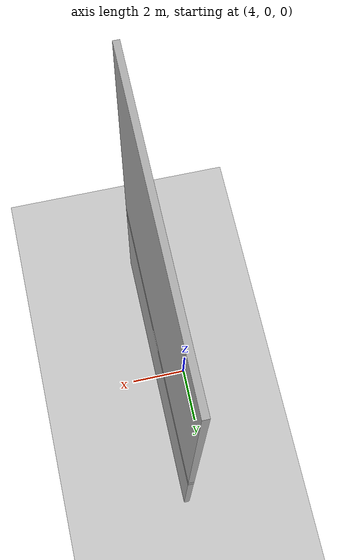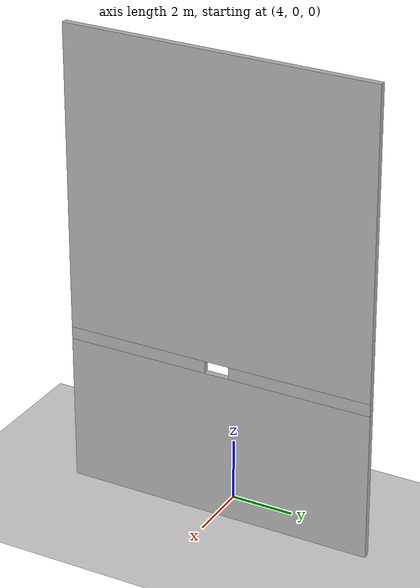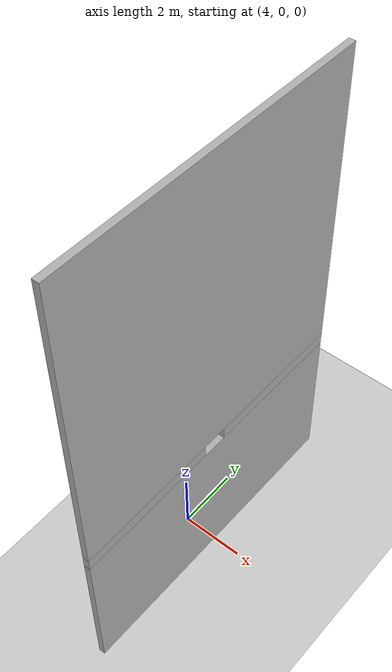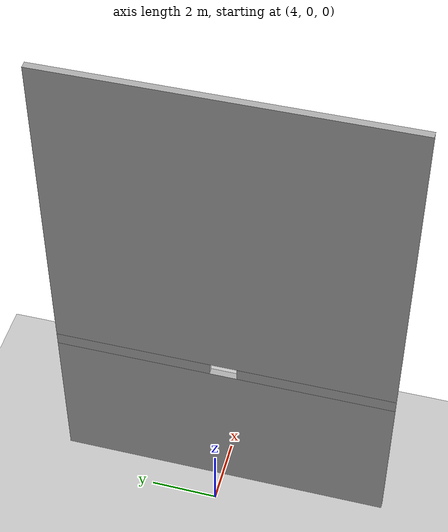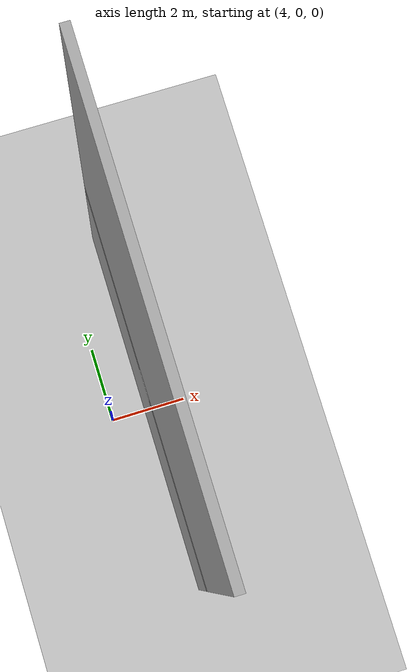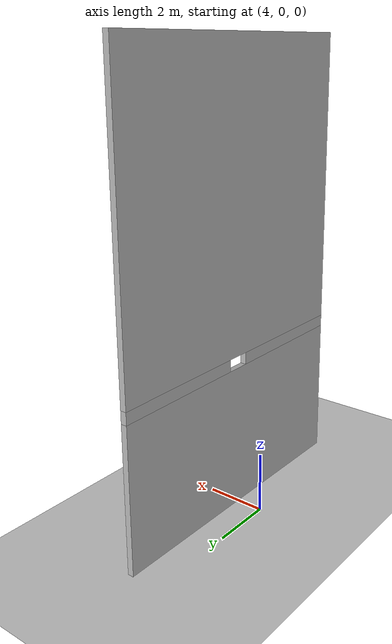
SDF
<?xml version="1.0" encoding="UTF-8"?>
<sdf version="1.9">
  <world name="peg_hole">
    <physics type="ode">
      <max_step_size>0.002</max_step_size>
      <real_time_factor>1.0</real_time_factor>
      <real_time_update_rate>500</real_time_update_rate>
    </physics>
    <gravity>0 0 -9.8</gravity>
    <scene>
      <grid>false</grid>
      <ambient>0.4 0.4 0.4 1</ambient>
      <background>0.7 0.7 0.7 1</background>
      <shadows>true</shadows>
    </scene>

    <model name="ground_plane">
      <static>true</static>
      <link name="link">
        <collision name="collision">
          <geometry><plane><normal>0 0 1</normal><size>100 100</size></plane></geometry>
        </collision>
        <visual name="visual">
          <geometry><plane><normal>0 0 1</normal><size>100 100</size></plane></geometry>
          <material><ambient>0.8 0.8 0.8 1</ambient><diffuse>0.8 0.8 0.8 1</diffuse></material>
        </visual>
      </link>
    </model>

    <light name="sun" type="directional">
      <pose>0 0 10 0 0 0</pose>
      <cast_shadows>true</cast_shadows>
      <direction>0.5 0.2 -0.9</direction>
    </light>

    <!-- MURO CON BUCO A X=5, Z=5 -->
    <!-- Altezza centro buco: 5.0m, Spessore muro: 0.2m, Gap: 0.4m -->

    <!-- Parte Bassa (fino a Z=4.8) -->
    <model name="wall_bottom">
      <static>true</static>
      <pose>5 0 2.4 0 0 0</pose>
      <link name="link">
        <collision name="col"><geometry><box><size>0.2 10 4.8</size></box></geometry></collision>
        <visual name="vis"><geometry><box><size>0.2 10 4.8</size></box></geometry>
          <material><ambient>0.5 0.5 0.5 1</ambient><diffuse>0.7 0.7 0.7 1</diffuse></material>
        </visual>
      </link>
    </model>

    <!-- Parte Alta (da Z=5.2 in su) -->
    <model name="wall_top">
      <static>true</static>
      <pose>5 0 10.1 0 0 0</pose>
      <link name="link">
        <collision name="col"><geometry><box><size>0.2 10 9.8</size></box></geometry></collision>
        <visual name="vis"><geometry><box><size>0.2 10 9.8</size></box></geometry>
          <material><ambient>0.5 0.5 0.5 1</ambient><diffuse>0.7 0.7 0.7 1</diffuse></material>
        </visual>
      </link>
    </model>

    <!-- Parte Sinistra -->
    <model name="wall_left">
      <static>true</static>
      <pose>5 -2.7 5.0 0 0 0</pose>
      <link name="link">
        <collision name="col"><geometry><box><size>0.2 4.6 0.4</size></box></geometry></collision>
        <visual name="vis"><geometry><box><size>0.2 4.6 0.4</size></box></geometry>
          <material><ambient>0.5 0.5 0.5 1</ambient><diffuse>0.7 0.7 0.7 1</diffuse></material>
        </visual>
      </link>
    </model>

    <!-- Parte Destra -->
    <model name="wall_right">
      <static>true</static>
      <pose>5 2.7 5.0 0 0 0</pose>
      <link name="link">
        <collision name="col"><geometry><box><size>0.2 4.6 0.4</size></box></geometry></collision>
        <visual name="vis"><geometry><box><size>0.2 4.6 0.4</size></box></geometry>
          <material><ambient>0.5 0.5 0.5 1</ambient><diffuse>0.7 0.7 0.7 1</diffuse></material>
        </visual>
      </link>
    </model>

  </world>
</sdf>
